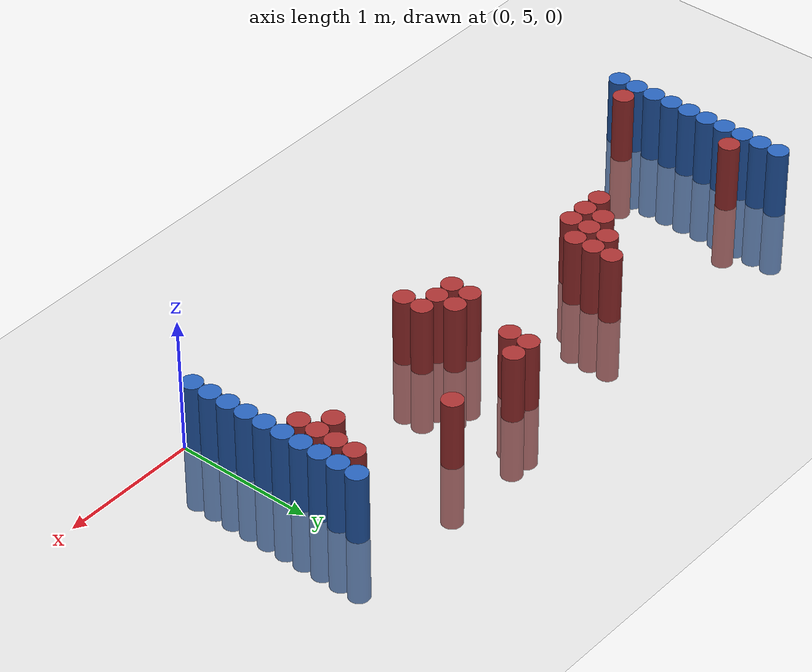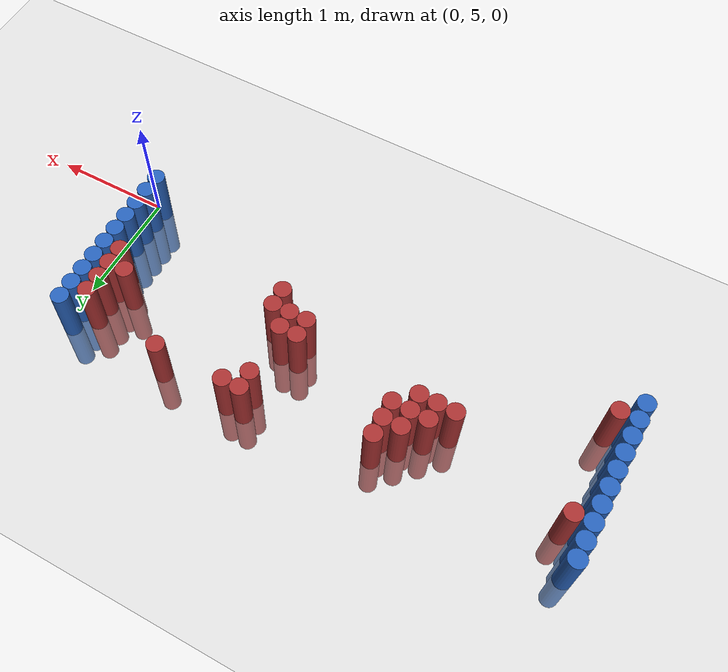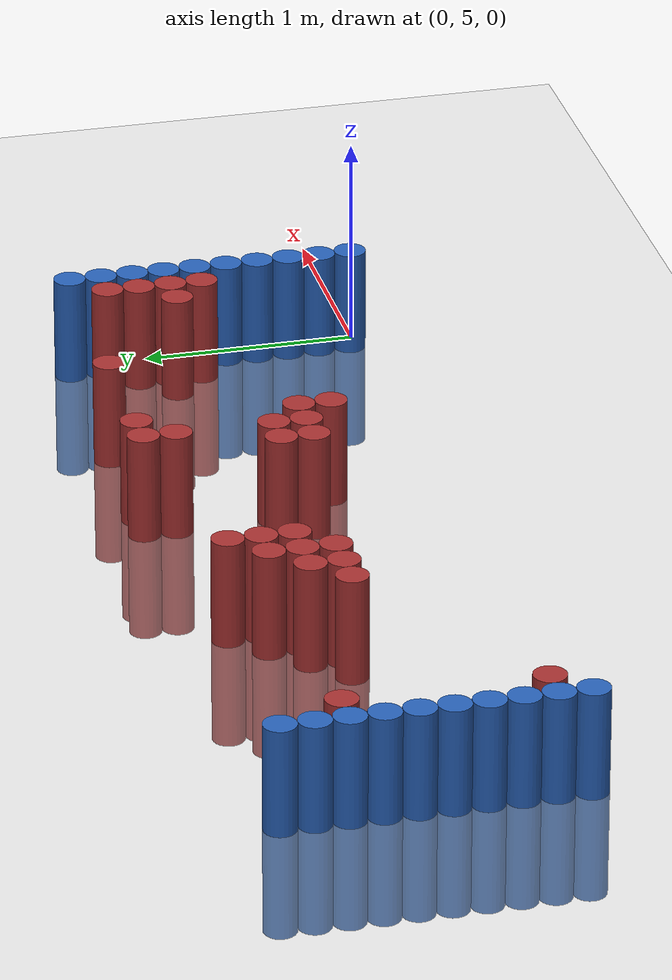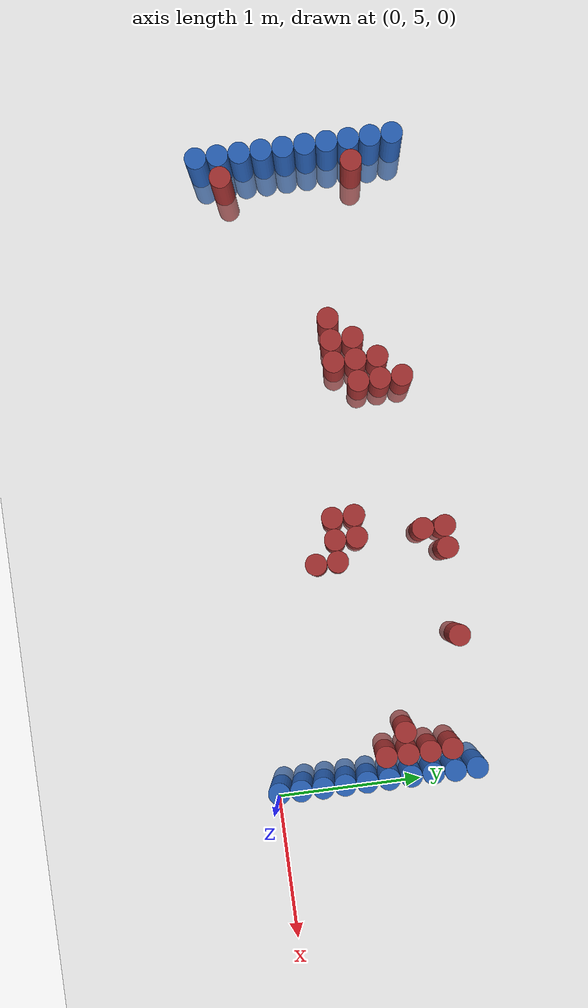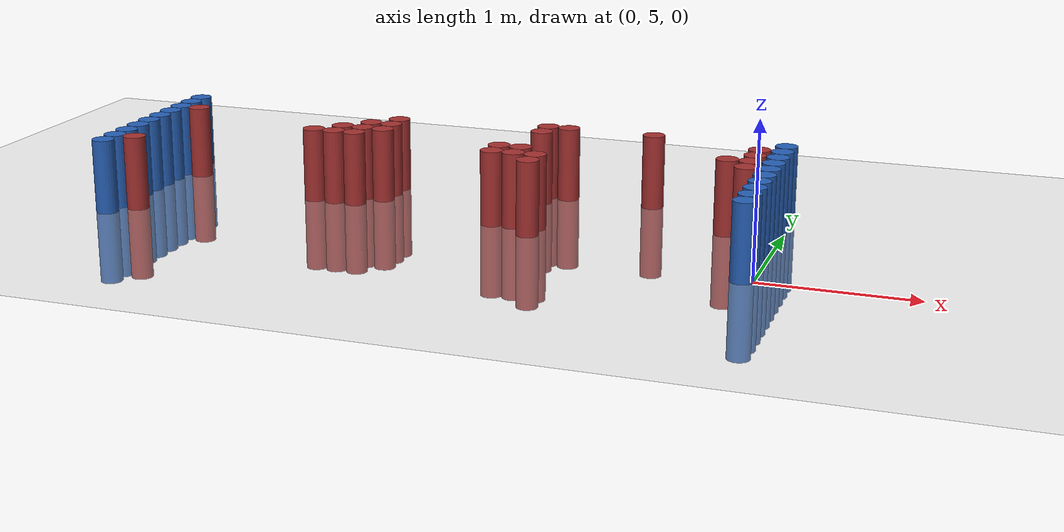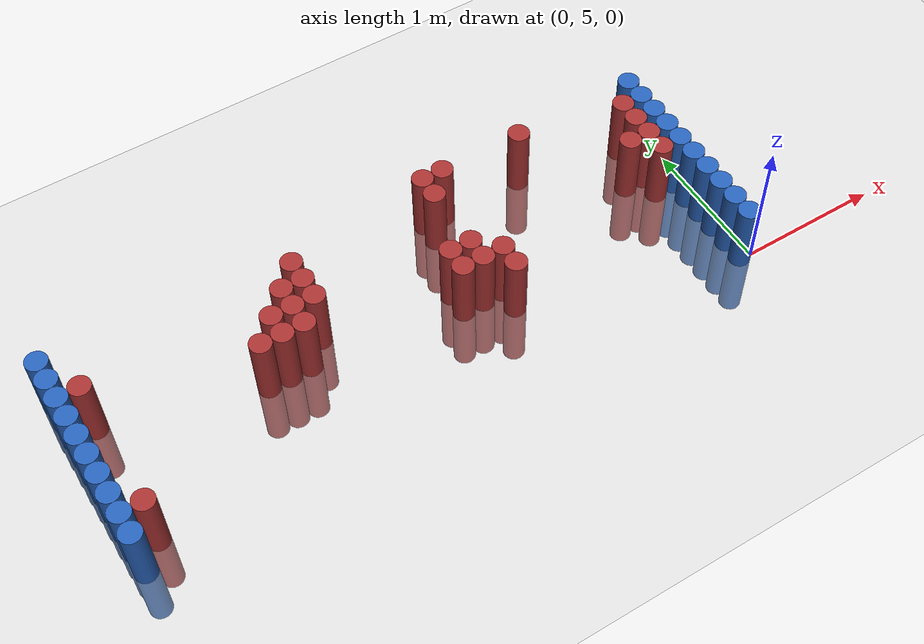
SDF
<sdf version="1.6">
 <world name="default">
  <model name="ground_plane">
   <static>1</static>
   <link name="link">
    <collision name="collision">
     <geometry><plane><normal>0 0 1</normal><size>100 100</size></plane></geometry>
     <surface><friction><ode><mu>100</mu><mu2>50</mu2></ode></friction></surface>
    </collision>
    <visual name="visual">
     <cast_shadows>0</cast_shadows>
     <geometry><plane><normal>0 0 1</normal><size>100 100</size></plane></geometry>
     <material>
      <script><uri>file://media/materials/scripts/gazebo.material</uri><name>Gazebo/Grey</name></script>
     </material>
    </visual>
   </link>
  </model>
  <model name="unit_cylinder_94">
   <static>1</static>
   <pose>-0.075000 5.025000 0.000000 0.000000 0.000000 0.000000</pose>
   <link name="link">
    <inertial>
     <mass>1</mass>
     <inertia><ixx>0.145833</ixx><ixy>0</ixy><ixz>0</ixz><iyy>0.145833</iyy><iyz>0</iyz><izz>0.125</izz></inertia>
    </inertial>
    <collision name="collision">
     <geometry><cylinder><radius>0.075000</radius><length>1</length></cylinder></geometry>
    </collision>
    <visual name="visual">
     <geometry><cylinder><radius>0.075000</radius><length>1</length></cylinder></geometry>
     <material>
      <ambient>0.152000 0.379000 0.720000 1</ambient>
      <diffuse>0.152000 0.379000 0.720000 1</diffuse>
     </material>
     <material>
      <script><name>Gazebo/Grey</name><uri>file://media/materials/scripts/gazebo.material</uri></script>
     </material>
    </visual>
   </link>
  </model>
  <model name="unit_cylinder_95">
   <static>1</static>
   <pose>-4.425000 5.025000 0.000000 0.000000 0.000000 0.000000</pose>
   <link name="link">
    <inertial>
     <mass>1</mass>
     <inertia><ixx>0.145833</ixx><ixy>0</ixy><ixz>0</ixz><iyy>0.145833</iyy><iyz>0</iyz><izz>0.125</izz></inertia>
    </inertial>
    <collision name="collision">
     <geometry><cylinder><radius>0.075000</radius><length>1</length></cylinder></geometry>
    </collision>
    <visual name="visual">
     <geometry><cylinder><radius>0.075000</radius><length>1</length></cylinder></geometry>
     <material>
      <ambient>0.152000 0.379000 0.720000 1</ambient>
      <diffuse>0.152000 0.379000 0.720000 1</diffuse>
     </material>
     <material>
      <script><name>Gazebo/Grey</name><uri>file://media/materials/scripts/gazebo.material</uri></script>
     </material>
    </visual>
   </link>
  </model>
  <model name="unit_cylinder_96">
   <static>1</static>
   <pose>-4.425000 5.175000 0.000000 0.000000 0.000000 0.000000</pose>
   <link name="link">
    <inertial>
     <mass>1</mass>
     <inertia><ixx>0.145833</ixx><ixy>0</ixy><ixz>0</ixz><iyy>0.145833</iyy><iyz>0</iyz><izz>0.125</izz></inertia>
    </inertial>
    <collision name="collision">
     <geometry><cylinder><radius>0.075000</radius><length>1</length></cylinder></geometry>
    </collision>
    <visual name="visual">
     <geometry><cylinder><radius>0.075000</radius><length>1</length></cylinder></geometry>
     <material>
      <ambient>0.152000 0.379000 0.720000 1</ambient>
      <diffuse>0.152000 0.379000 0.720000 1</diffuse>
     </material>
     <material>
      <script><name>Gazebo/Grey</name><uri>file://media/materials/scripts/gazebo.material</uri></script>
     </material>
    </visual>
   </link>
  </model>
  <model name="unit_cylinder_97">
   <static>1</static>
   <pose>-4.425000 5.325000 0.000000 0.000000 0.000000 0.000000</pose>
   <link name="link">
    <inertial>
     <mass>1</mass>
     <inertia><ixx>0.145833</ixx><ixy>0</ixy><ixz>0</ixz><iyy>0.145833</iyy><iyz>0</iyz><izz>0.125</izz></inertia>
    </inertial>
    <collision name="collision">
     <geometry><cylinder><radius>0.075000</radius><length>1</length></cylinder></geometry>
    </collision>
    <visual name="visual">
     <geometry><cylinder><radius>0.075000</radius><length>1</length></cylinder></geometry>
     <material>
      <ambient>0.152000 0.379000 0.720000 1</ambient>
      <diffuse>0.152000 0.379000 0.720000 1</diffuse>
     </material>
     <material>
      <script><name>Gazebo/Grey</name><uri>file://media/materials/scripts/gazebo.material</uri></script>
     </material>
    </visual>
   </link>
  </model>
  <model name="unit_cylinder_98">
   <static>1</static>
   <pose>-4.425000 5.475000 0.000000 0.000000 0.000000 0.000000</pose>
   <link name="link">
    <inertial>
     <mass>1</mass>
     <inertia><ixx>0.145833</ixx><ixy>0</ixy><ixz>0</ixz><iyy>0.145833</iyy><iyz>0</iyz><izz>0.125</izz></inertia>
    </inertial>
    <collision name="collision">
     <geometry><cylinder><radius>0.075000</radius><length>1</length></cylinder></geometry>
    </collision>
    <visual name="visual">
     <geometry><cylinder><radius>0.075000</radius><length>1</length></cylinder></geometry>
     <material>
      <ambient>0.152000 0.379000 0.720000 1</ambient>
      <diffuse>0.152000 0.379000 0.720000 1</diffuse>
     </material>
     <material>
      <script><name>Gazebo/Grey</name><uri>file://media/materials/scripts/gazebo.material</uri></script>
     </material>
    </visual>
   </link>
  </model>
  <model name="unit_cylinder_99">
   <static>1</static>
   <pose>-4.425000 5.625000 0.000000 0.000000 0.000000 0.000000</pose>
   <link name="link">
    <inertial>
     <mass>1</mass>
     <inertia><ixx>0.145833</ixx><ixy>0</ixy><ixz>0</ixz><iyy>0.145833</iyy><iyz>0</iyz><izz>0.125</izz></inertia>
    </inertial>
    <collision name="collision">
     <geometry><cylinder><radius>0.075000</radius><length>1</length></cylinder></geometry>
    </collision>
    <visual name="visual">
     <geometry><cylinder><radius>0.075000</radius><length>1</length></cylinder></geometry>
     <material>
      <ambient>0.152000 0.379000 0.720000 1</ambient>
      <diffuse>0.152000 0.379000 0.720000 1</diffuse>
     </material>
     <material>
      <script><name>Gazebo/Grey</name><uri>file://media/materials/scripts/gazebo.material</uri></script>
     </material>
    </visual>
   </link>
  </model>
  <model name="unit_cylinder_100">
   <static>1</static>
   <pose>-4.425000 5.775000 0.000000 0.000000 0.000000 0.000000</pose>
   <link name="link">
    <inertial>
     <mass>1</mass>
     <inertia><ixx>0.145833</ixx><ixy>0</ixy><ixz>0</ixz><iyy>0.145833</iyy><iyz>0</iyz><izz>0.125</izz></inertia>
    </inertial>
    <collision name="collision">
     <geometry><cylinder><radius>0.075000</radius><length>1</length></cylinder></geometry>
    </collision>
    <visual name="visual">
     <geometry><cylinder><radius>0.075000</radius><length>1</length></cylinder></geometry>
     <material>
      <ambient>0.152000 0.379000 0.720000 1</ambient>
      <diffuse>0.152000 0.379000 0.720000 1</diffuse>
     </material>
     <material>
      <script><name>Gazebo/Grey</name><uri>file://media/materials/scripts/gazebo.material</uri></script>
     </material>
    </visual>
   </link>
  </model>
  <model name="unit_cylinder_101">
   <static>1</static>
   <pose>-4.425000 5.925000 0.000000 0.000000 0.000000 0.000000</pose>
   <link name="link">
    <inertial>
     <mass>1</mass>
     <inertia><ixx>0.145833</ixx><ixy>0</ixy><ixz>0</ixz><iyy>0.145833</iyy><iyz>0</iyz><izz>0.125</izz></inertia>
    </inertial>
    <collision name="collision">
     <geometry><cylinder><radius>0.075000</radius><length>1</length></cylinder></geometry>
    </collision>
    <visual name="visual">
     <geometry><cylinder><radius>0.075000</radius><length>1</length></cylinder></geometry>
     <material>
      <ambient>0.152000 0.379000 0.720000 1</ambient>
      <diffuse>0.152000 0.379000 0.720000 1</diffuse>
     </material>
     <material>
      <script><name>Gazebo/Grey</name><uri>file://media/materials/scripts/gazebo.material</uri></script>
     </material>
    </visual>
   </link>
  </model>
  <model name="unit_cylinder_102">
   <static>1</static>
   <pose>-4.425000 6.075000 0.000000 0.000000 0.000000 0.000000</pose>
   <link name="link">
    <inertial>
     <mass>1</mass>
     <inertia><ixx>0.145833</ixx><ixy>0</ixy><ixz>0</ixz><iyy>0.145833</iyy><iyz>0</iyz><izz>0.125</izz></inertia>
    </inertial>
    <collision name="collision">
     <geometry><cylinder><radius>0.075000</radius><length>1</length></cylinder></geometry>
    </collision>
    <visual name="visual">
     <geometry><cylinder><radius>0.075000</radius><length>1</length></cylinder></geometry>
     <material>
      <ambient>0.152000 0.379000 0.720000 1</ambient>
      <diffuse>0.152000 0.379000 0.720000 1</diffuse>
     </material>
     <material>
      <script><name>Gazebo/Grey</name><uri>file://media/materials/scripts/gazebo.material</uri></script>
     </material>
    </visual>
   </link>
  </model>
  <model name="unit_cylinder_103">
   <static>1</static>
   <pose>-4.425000 6.225000 0.000000 0.000000 0.000000 0.000000</pose>
   <link name="link">
    <inertial>
     <mass>1</mass>
     <inertia><ixx>0.145833</ixx><ixy>0</ixy><ixz>0</ixz><iyy>0.145833</iyy><iyz>0</iyz><izz>0.125</izz></inertia>
    </inertial>
    <collision name="collision">
     <geometry><cylinder><radius>0.075000</radius><length>1</length></cylinder></geometry>
    </collision>
    <visual name="visual">
     <geometry><cylinder><radius>0.075000</radius><length>1</length></cylinder></geometry>
     <material>
      <ambient>0.152000 0.379000 0.720000 1</ambient>
      <diffuse>0.152000 0.379000 0.720000 1</diffuse>
     </material>
     <material>
      <script><name>Gazebo/Grey</name><uri>file://media/materials/scripts/gazebo.material</uri></script>
     </material>
    </visual>
   </link>
  </model>
  <model name="unit_cylinder_104">
   <static>1</static>
   <pose>-4.425000 6.375000 0.000000 0.000000 0.000000 0.000000</pose>
   <link name="link">
    <inertial>
     <mass>1</mass>
     <inertia><ixx>0.145833</ixx><ixy>0</ixy><ixz>0</ixz><iyy>0.145833</iyy><iyz>0</iyz><izz>0.125</izz></inertia>
    </inertial>
    <collision name="collision">
     <geometry><cylinder><radius>0.075000</radius><length>1</length></cylinder></geometry>
    </collision>
    <visual name="visual">
     <geometry><cylinder><radius>0.075000</radius><length>1</length></cylinder></geometry>
     <material>
      <ambient>0.152000 0.379000 0.720000 1</ambient>
      <diffuse>0.152000 0.379000 0.720000 1</diffuse>
     </material>
     <material>
      <script><name>Gazebo/Grey</name><uri>file://media/materials/scripts/gazebo.material</uri></script>
     </material>
    </visual>
   </link>
  </model>
  <model name="unit_cylinder_126">
   <static>1</static>
   <pose>-4.275000 5.175000 0.000000 0.000000 0.000000 0.000000</pose>
   <link name="link">
    <inertial>
     <mass>1</mass>
     <inertia><ixx>0.145833</ixx><ixy>0</ixy><ixz>0</ixz><iyy>0.145833</iyy><iyz>0</iyz><izz>0.125</izz></inertia>
    </inertial>
    <collision name="collision">
     <geometry><cylinder><radius>0.075000</radius><length>1</length></cylinder></geometry>
    </collision>
    <visual name="visual">
     <geometry><cylinder><radius>0.075000</radius><length>1</length></cylinder></geometry>
     <material>
      <ambient>0.648000 0.192000 0.192000 1</ambient>
      <diffuse>0.648000 0.192000 0.192000 1</diffuse>
     </material>
     <material>
      <script><name>Gazebo/Grey</name><uri>file://media/materials/scripts/gazebo.material</uri></script>
     </material>
    </visual>
   </link>
  </model>
  <model name="unit_cylinder_127">
   <static>1</static>
   <pose>-4.275000 6.075000 0.000000 0.000000 0.000000 0.000000</pose>
   <link name="link">
    <inertial>
     <mass>1</mass>
     <inertia><ixx>0.145833</ixx><ixy>0</ixy><ixz>0</ixz><iyy>0.145833</iyy><iyz>0</iyz><izz>0.125</izz></inertia>
    </inertial>
    <collision name="collision">
     <geometry><cylinder><radius>0.075000</radius><length>1</length></cylinder></geometry>
    </collision>
    <visual name="visual">
     <geometry><cylinder><radius>0.075000</radius><length>1</length></cylinder></geometry>
     <material>
      <ambient>0.648000 0.192000 0.192000 1</ambient>
      <diffuse>0.648000 0.192000 0.192000 1</diffuse>
     </material>
     <material>
      <script><name>Gazebo/Grey</name><uri>file://media/materials/scripts/gazebo.material</uri></script>
     </material>
    </visual>
   </link>
  </model>
  <model name="unit_cylinder_161">
   <static>1</static>
   <pose>-3.225000 5.775000 0.000000 0.000000 0.000000 0.000000</pose>
   <link name="link">
    <inertial>
     <mass>1</mass>
     <inertia><ixx>0.145833</ixx><ixy>0</ixy><ixz>0</ixz><iyy>0.145833</iyy><iyz>0</iyz><izz>0.125</izz></inertia>
    </inertial>
    <collision name="collision">
     <geometry><cylinder><radius>0.075000</radius><length>1</length></cylinder></geometry>
    </collision>
    <visual name="visual">
     <geometry><cylinder><radius>0.075000</radius><length>1</length></cylinder></geometry>
     <material>
      <ambient>0.648000 0.192000 0.192000 1</ambient>
      <diffuse>0.648000 0.192000 0.192000 1</diffuse>
     </material>
     <material>
      <script><name>Gazebo/Grey</name><uri>file://media/materials/scripts/gazebo.material</uri></script>
     </material>
    </visual>
   </link>
  </model>
  <model name="unit_cylinder_162">
   <static>1</static>
   <pose>-3.075000 5.775000 0.000000 0.000000 0.000000 0.000000</pose>
   <link name="link">
    <inertial>
     <mass>1</mass>
     <inertia><ixx>0.145833</ixx><ixy>0</ixy><ixz>0</ixz><iyy>0.145833</iyy><iyz>0</iyz><izz>0.125</izz></inertia>
    </inertial>
    <collision name="collision">
     <geometry><cylinder><radius>0.075000</radius><length>1</length></cylinder></geometry>
    </collision>
    <visual name="visual">
     <geometry><cylinder><radius>0.075000</radius><length>1</length></cylinder></geometry>
     <material>
      <ambient>0.648000 0.192000 0.192000 1</ambient>
      <diffuse>0.648000 0.192000 0.192000 1</diffuse>
     </material>
     <material>
      <script><name>Gazebo/Grey</name><uri>file://media/materials/scripts/gazebo.material</uri></script>
     </material>
    </visual>
   </link>
  </model>
  <model name="unit_cylinder_163">
   <static>1</static>
   <pose>-3.075000 5.925000 0.000000 0.000000 0.000000 0.000000</pose>
   <link name="link">
    <inertial>
     <mass>1</mass>
     <inertia><ixx>0.145833</ixx><ixy>0</ixy><ixz>0</ixz><iyy>0.145833</iyy><iyz>0</iyz><izz>0.125</izz></inertia>
    </inertial>
    <collision name="collision">
     <geometry><cylinder><radius>0.075000</radius><length>1</length></cylinder></geometry>
    </collision>
    <visual name="visual">
     <geometry><cylinder><radius>0.075000</radius><length>1</length></cylinder></geometry>
     <material>
      <ambient>0.648000 0.192000 0.192000 1</ambient>
      <diffuse>0.648000 0.192000 0.192000 1</diffuse>
     </material>
     <material>
      <script><name>Gazebo/Grey</name><uri>file://media/materials/scripts/gazebo.material</uri></script>
     </material>
    </visual>
   </link>
  </model>
  <model name="unit_cylinder_167">
   <static>1</static>
   <pose>-2.925000 5.775000 0.000000 0.000000 0.000000 0.000000</pose>
   <link name="link">
    <inertial>
     <mass>1</mass>
     <inertia><ixx>0.145833</ixx><ixy>0</ixy><ixz>0</ixz><iyy>0.145833</iyy><iyz>0</iyz><izz>0.125</izz></inertia>
    </inertial>
    <collision name="collision">
     <geometry><cylinder><radius>0.075000</radius><length>1</length></cylinder></geometry>
    </collision>
    <visual name="visual">
     <geometry><cylinder><radius>0.075000</radius><length>1</length></cylinder></geometry>
     <material>
      <ambient>0.648000 0.192000 0.192000 1</ambient>
      <diffuse>0.648000 0.192000 0.192000 1</diffuse>
     </material>
     <material>
      <script><name>Gazebo/Grey</name><uri>file://media/materials/scripts/gazebo.material</uri></script>
     </material>
    </visual>
   </link>
  </model>
  <model name="unit_cylinder_168">
   <static>1</static>
   <pose>-2.925000 5.925000 0.000000 0.000000 0.000000 0.000000</pose>
   <link name="link">
    <inertial>
     <mass>1</mass>
     <inertia><ixx>0.145833</ixx><ixy>0</ixy><ixz>0</ixz><iyy>0.145833</iyy><iyz>0</iyz><izz>0.125</izz></inertia>
    </inertial>
    <collision name="collision">
     <geometry><cylinder><radius>0.075000</radius><length>1</length></cylinder></geometry>
    </collision>
    <visual name="visual">
     <geometry><cylinder><radius>0.075000</radius><length>1</length></cylinder></geometry>
     <material>
      <ambient>0.648000 0.192000 0.192000 1</ambient>
      <diffuse>0.648000 0.192000 0.192000 1</diffuse>
     </material>
     <material>
      <script><name>Gazebo/Grey</name><uri>file://media/materials/scripts/gazebo.material</uri></script>
     </material>
    </visual>
   </link>
  </model>
  <model name="unit_cylinder_169">
   <static>1</static>
   <pose>-2.925000 6.075000 0.000000 0.000000 0.000000 0.000000</pose>
   <link name="link">
    <inertial>
     <mass>1</mass>
     <inertia><ixx>0.145833</ixx><ixy>0</ixy><ixz>0</ixz><iyy>0.145833</iyy><iyz>0</iyz><izz>0.125</izz></inertia>
    </inertial>
    <collision name="collision">
     <geometry><cylinder><radius>0.075000</radius><length>1</length></cylinder></geometry>
    </collision>
    <visual name="visual">
     <geometry><cylinder><radius>0.075000</radius><length>1</length></cylinder></geometry>
     <material>
      <ambient>0.648000 0.192000 0.192000 1</ambient>
      <diffuse>0.648000 0.192000 0.192000 1</diffuse>
     </material>
     <material>
      <script><name>Gazebo/Grey</name><uri>file://media/materials/scripts/gazebo.material</uri></script>
     </material>
    </visual>
   </link>
  </model>
  <model name="unit_cylinder_175">
   <static>1</static>
   <pose>-2.775000 5.925000 0.000000 0.000000 0.000000 0.000000</pose>
   <link name="link">
    <inertial>
     <mass>1</mass>
     <inertia><ixx>0.145833</ixx><ixy>0</ixy><ixz>0</ixz><iyy>0.145833</iyy><iyz>0</iyz><izz>0.125</izz></inertia>
    </inertial>
    <collision name="collision">
     <geometry><cylinder><radius>0.075000</radius><length>1</length></cylinder></geometry>
    </collision>
    <visual name="visual">
     <geometry><cylinder><radius>0.075000</radius><length>1</length></cylinder></geometry>
     <material>
      <ambient>0.648000 0.192000 0.192000 1</ambient>
      <diffuse>0.648000 0.192000 0.192000 1</diffuse>
     </material>
     <material>
      <script><name>Gazebo/Grey</name><uri>file://media/materials/scripts/gazebo.material</uri></script>
     </material>
    </visual>
   </link>
  </model>
  <model name="unit_cylinder_176">
   <static>1</static>
   <pose>-2.775000 6.075000 0.000000 0.000000 0.000000 0.000000</pose>
   <link name="link">
    <inertial>
     <mass>1</mass>
     <inertia><ixx>0.145833</ixx><ixy>0</ixy><ixz>0</ixz><iyy>0.145833</iyy><iyz>0</iyz><izz>0.125</izz></inertia>
    </inertial>
    <collision name="collision">
     <geometry><cylinder><radius>0.075000</radius><length>1</length></cylinder></geometry>
    </collision>
    <visual name="visual">
     <geometry><cylinder><radius>0.075000</radius><length>1</length></cylinder></geometry>
     <material>
      <ambient>0.648000 0.192000 0.192000 1</ambient>
      <diffuse>0.648000 0.192000 0.192000 1</diffuse>
     </material>
     <material>
      <script><name>Gazebo/Grey</name><uri>file://media/materials/scripts/gazebo.material</uri></script>
     </material>
    </visual>
   </link>
  </model>
  <model name="unit_cylinder_177">
   <static>1</static>
   <pose>-2.775000 6.225000 0.000000 0.000000 0.000000 0.000000</pose>
   <link name="link">
    <inertial>
     <mass>1</mass>
     <inertia><ixx>0.145833</ixx><ixy>0</ixy><ixz>0</ixz><iyy>0.145833</iyy><iyz>0</iyz><izz>0.125</izz></inertia>
    </inertial>
    <collision name="collision">
     <geometry><cylinder><radius>0.075000</radius><length>1</length></cylinder></geometry>
    </collision>
    <visual name="visual">
     <geometry><cylinder><radius>0.075000</radius><length>1</length></cylinder></geometry>
     <material>
      <ambient>0.648000 0.192000 0.192000 1</ambient>
      <diffuse>0.648000 0.192000 0.192000 1</diffuse>
     </material>
     <material>
      <script><name>Gazebo/Grey</name><uri>file://media/materials/scripts/gazebo.material</uri></script>
     </material>
    </visual>
   </link>
  </model>
  <model name="unit_cylinder_201">
   <static>1</static>
   <pose>-1.875000 5.625000 0.000000 0.000000 0.000000 0.000000</pose>
   <link name="link">
    <inertial>
     <mass>1</mass>
     <inertia><ixx>0.145833</ixx><ixy>0</ixy><ixz>0</ixz><iyy>0.145833</iyy><iyz>0</iyz><izz>0.125</izz></inertia>
    </inertial>
    <collision name="collision">
     <geometry><cylinder><radius>0.075000</radius><length>1</length></cylinder></geometry>
    </collision>
    <visual name="visual">
     <geometry><cylinder><radius>0.075000</radius><length>1</length></cylinder></geometry>
     <material>
      <ambient>0.648000 0.192000 0.192000 1</ambient>
      <diffuse>0.648000 0.192000 0.192000 1</diffuse>
     </material>
     <material>
      <script><name>Gazebo/Grey</name><uri>file://media/materials/scripts/gazebo.material</uri></script>
     </material>
    </visual>
   </link>
  </model>
  <model name="unit_cylinder_202">
   <static>1</static>
   <pose>-1.875000 5.775000 0.000000 0.000000 0.000000 0.000000</pose>
   <link name="link">
    <inertial>
     <mass>1</mass>
     <inertia><ixx>0.145833</ixx><ixy>0</ixy><ixz>0</ixz><iyy>0.145833</iyy><iyz>0</iyz><izz>0.125</izz></inertia>
    </inertial>
    <collision name="collision">
     <geometry><cylinder><radius>0.075000</radius><length>1</length></cylinder></geometry>
    </collision>
    <visual name="visual">
     <geometry><cylinder><radius>0.075000</radius><length>1</length></cylinder></geometry>
     <material>
      <ambient>0.648000 0.192000 0.192000 1</ambient>
      <diffuse>0.648000 0.192000 0.192000 1</diffuse>
     </material>
     <material>
      <script><name>Gazebo/Grey</name><uri>file://media/materials/scripts/gazebo.material</uri></script>
     </material>
    </visual>
   </link>
  </model>
  <model name="unit_cylinder_210">
   <static>1</static>
   <pose>-1.725000 5.625000 0.000000 0.000000 0.000000 0.000000</pose>
   <link name="link">
    <inertial>
     <mass>1</mass>
     <inertia><ixx>0.145833</ixx><ixy>0</ixy><ixz>0</ixz><iyy>0.145833</iyy><iyz>0</iyz><izz>0.125</izz></inertia>
    </inertial>
    <collision name="collision">
     <geometry><cylinder><radius>0.075000</radius><length>1</length></cylinder></geometry>
    </collision>
    <visual name="visual">
     <geometry><cylinder><radius>0.075000</radius><length>1</length></cylinder></geometry>
     <material>
      <ambient>0.648000 0.192000 0.192000 1</ambient>
      <diffuse>0.648000 0.192000 0.192000 1</diffuse>
     </material>
     <material>
      <script><name>Gazebo/Grey</name><uri>file://media/materials/scripts/gazebo.material</uri></script>
     </material>
    </visual>
   </link>
  </model>
  <model name="unit_cylinder_211">
   <static>1</static>
   <pose>-1.725000 5.775000 0.000000 0.000000 0.000000 0.000000</pose>
   <link name="link">
    <inertial>
     <mass>1</mass>
     <inertia><ixx>0.145833</ixx><ixy>0</ixy><ixz>0</ixz><iyy>0.145833</iyy><iyz>0</iyz><izz>0.125</izz></inertia>
    </inertial>
    <collision name="collision">
     <geometry><cylinder><radius>0.075000</radius><length>1</length></cylinder></geometry>
    </collision>
    <visual name="visual">
     <geometry><cylinder><radius>0.075000</radius><length>1</length></cylinder></geometry>
     <material>
      <ambient>0.648000 0.192000 0.192000 1</ambient>
      <diffuse>0.648000 0.192000 0.192000 1</diffuse>
     </material>
     <material>
      <script><name>Gazebo/Grey</name><uri>file://media/materials/scripts/gazebo.material</uri></script>
     </material>
    </visual>
   </link>
  </model>
  <model name="unit_cylinder_212">
   <static>1</static>
   <pose>-1.725000 6.225000 0.000000 0.000000 0.000000 0.000000</pose>
   <link name="link">
    <inertial>
     <mass>1</mass>
     <inertia><ixx>0.145833</ixx><ixy>0</ixy><ixz>0</ixz><iyy>0.145833</iyy><iyz>0</iyz><izz>0.125</izz></inertia>
    </inertial>
    <collision name="collision">
     <geometry><cylinder><radius>0.075000</radius><length>1</length></cylinder></geometry>
    </collision>
    <visual name="visual">
     <geometry><cylinder><radius>0.075000</radius><length>1</length></cylinder></geometry>
     <material>
      <ambient>0.648000 0.192000 0.192000 1</ambient>
      <diffuse>0.648000 0.192000 0.192000 1</diffuse>
     </material>
     <material>
      <script><name>Gazebo/Grey</name><uri>file://media/materials/scripts/gazebo.material</uri></script>
     </material>
    </visual>
   </link>
  </model>
  <model name="unit_cylinder_213">
   <static>1</static>
   <pose>-1.725000 6.375000 0.000000 0.000000 0.000000 0.000000</pose>
   <link name="link">
    <inertial>
     <mass>1</mass>
     <inertia><ixx>0.145833</ixx><ixy>0</ixy><ixz>0</ixz><iyy>0.145833</iyy><iyz>0</iyz><izz>0.125</izz></inertia>
    </inertial>
    <collision name="collision">
     <geometry><cylinder><radius>0.075000</radius><length>1</length></cylinder></geometry>
    </collision>
    <visual name="visual">
     <geometry><cylinder><radius>0.075000</radius><length>1</length></cylinder></geometry>
     <material>
      <ambient>0.648000 0.192000 0.192000 1</ambient>
      <diffuse>0.648000 0.192000 0.192000 1</diffuse>
     </material>
     <material>
      <script><name>Gazebo/Grey</name><uri>file://media/materials/scripts/gazebo.material</uri></script>
     </material>
    </visual>
   </link>
  </model>
  <model name="unit_cylinder_218">
   <static>1</static>
   <pose>-1.575000 5.475000 0.000000 0.000000 0.000000 0.000000</pose>
   <link name="link">
    <inertial>
     <mass>1</mass>
     <inertia><ixx>0.145833</ixx><ixy>0</ixy><ixz>0</ixz><iyy>0.145833</iyy><iyz>0</iyz><izz>0.125</izz></inertia>
    </inertial>
    <collision name="collision">
     <geometry><cylinder><radius>0.075000</radius><length>1</length></cylinder></geometry>
    </collision>
    <visual name="visual">
     <geometry><cylinder><radius>0.075000</radius><length>1</length></cylinder></geometry>
     <material>
      <ambient>0.648000 0.192000 0.192000 1</ambient>
      <diffuse>0.648000 0.192000 0.192000 1</diffuse>
     </material>
     <material>
      <script><name>Gazebo/Grey</name><uri>file://media/materials/scripts/gazebo.material</uri></script>
     </material>
    </visual>
   </link>
  </model>
  <model name="unit_cylinder_219">
   <static>1</static>
   <pose>-1.575000 5.625000 0.000000 0.000000 0.000000 0.000000</pose>
   <link name="link">
    <inertial>
     <mass>1</mass>
     <inertia><ixx>0.145833</ixx><ixy>0</ixy><ixz>0</ixz><iyy>0.145833</iyy><iyz>0</iyz><izz>0.125</izz></inertia>
    </inertial>
    <collision name="collision">
     <geometry><cylinder><radius>0.075000</radius><length>1</length></cylinder></geometry>
    </collision>
    <visual name="visual">
     <geometry><cylinder><radius>0.075000</radius><length>1</length></cylinder></geometry>
     <material>
      <ambient>0.648000 0.192000 0.192000 1</ambient>
      <diffuse>0.648000 0.192000 0.192000 1</diffuse>
     </material>
     <material>
      <script><name>Gazebo/Grey</name><uri>file://media/materials/scripts/gazebo.material</uri></script>
     </material>
    </visual>
   </link>
  </model>
  <model name="unit_cylinder_220">
   <static>1</static>
   <pose>-1.575000 6.375000 0.000000 0.000000 0.000000 0.000000</pose>
   <link name="link">
    <inertial>
     <mass>1</mass>
     <inertia><ixx>0.145833</ixx><ixy>0</ixy><ixz>0</ixz><iyy>0.145833</iyy><iyz>0</iyz><izz>0.125</izz></inertia>
    </inertial>
    <collision name="collision">
     <geometry><cylinder><radius>0.075000</radius><length>1</length></cylinder></geometry>
    </collision>
    <visual name="visual">
     <geometry><cylinder><radius>0.075000</radius><length>1</length></cylinder></geometry>
     <material>
      <ambient>0.648000 0.192000 0.192000 1</ambient>
      <diffuse>0.648000 0.192000 0.192000 1</diffuse>
     </material>
     <material>
      <script><name>Gazebo/Grey</name><uri>file://media/materials/scripts/gazebo.material</uri></script>
     </material>
    </visual>
   </link>
  </model>
  <model name="unit_cylinder_224">
   <static>1</static>
   <pose>-0.975000 6.375000 0.000000 0.000000 0.000000 0.000000</pose>
   <link name="link">
    <inertial>
     <mass>1</mass>
     <inertia><ixx>0.145833</ixx><ixy>0</ixy><ixz>0</ixz><iyy>0.145833</iyy><iyz>0</iyz><izz>0.125</izz></inertia>
    </inertial>
    <collision name="collision">
     <geometry><cylinder><radius>0.075000</radius><length>1</length></cylinder></geometry>
    </collision>
    <visual name="visual">
     <geometry><cylinder><radius>0.075000</radius><length>1</length></cylinder></geometry>
     <material>
      <ambient>0.648000 0.192000 0.192000 1</ambient>
      <diffuse>0.648000 0.192000 0.192000 1</diffuse>
     </material>
     <material>
      <script><name>Gazebo/Grey</name><uri>file://media/materials/scripts/gazebo.material</uri></script>
     </material>
    </visual>
   </link>
  </model>
  <model name="unit_cylinder_230">
   <static>1</static>
   <pose>-0.375000 5.925000 0.000000 0.000000 0.000000 0.000000</pose>
   <link name="link">
    <inertial>
     <mass>1</mass>
     <inertia><ixx>0.145833</ixx><ixy>0</ixy><ixz>0</ixz><iyy>0.145833</iyy><iyz>0</iyz><izz>0.125</izz></inertia>
    </inertial>
    <collision name="collision">
     <geometry><cylinder><radius>0.075000</radius><length>1</length></cylinder></geometry>
    </collision>
    <visual name="visual">
     <geometry><cylinder><radius>0.075000</radius><length>1</length></cylinder></geometry>
     <material>
      <ambient>0.648000 0.192000 0.192000 1</ambient>
      <diffuse>0.648000 0.192000 0.192000 1</diffuse>
     </material>
     <material>
      <script><name>Gazebo/Grey</name><uri>file://media/materials/scripts/gazebo.material</uri></script>
     </material>
    </visual>
   </link>
  </model>
  <model name="unit_cylinder_235">
   <static>1</static>
   <pose>-0.225000 5.775000 0.000000 0.000000 0.000000 0.000000</pose>
   <link name="link">
    <inertial>
     <mass>1</mass>
     <inertia><ixx>0.145833</ixx><ixy>0</ixy><ixz>0</ixz><iyy>0.145833</iyy><iyz>0</iyz><izz>0.125</izz></inertia>
    </inertial>
    <collision name="collision">
     <geometry><cylinder><radius>0.075000</radius><length>1</length></cylinder></geometry>
    </collision>
    <visual name="visual">
     <geometry><cylinder><radius>0.075000</radius><length>1</length></cylinder></geometry>
     <material>
      <ambient>0.648000 0.192000 0.192000 1</ambient>
      <diffuse>0.648000 0.192000 0.192000 1</diffuse>
     </material>
     <material>
      <script><name>Gazebo/Grey</name><uri>file://media/materials/scripts/gazebo.material</uri></script>
     </material>
    </visual>
   </link>
  </model>
  <model name="unit_cylinder_236">
   <static>1</static>
   <pose>-0.225000 5.925000 0.000000 0.000000 0.000000 0.000000</pose>
   <link name="link">
    <inertial>
     <mass>1</mass>
     <inertia><ixx>0.145833</ixx><ixy>0</ixy><ixz>0</ixz><iyy>0.145833</iyy><iyz>0</iyz><izz>0.125</izz></inertia>
    </inertial>
    <collision name="collision">
     <geometry><cylinder><radius>0.075000</radius><length>1</length></cylinder></geometry>
    </collision>
    <visual name="visual">
     <geometry><cylinder><radius>0.075000</radius><length>1</length></cylinder></geometry>
     <material>
      <ambient>0.648000 0.192000 0.192000 1</ambient>
      <diffuse>0.648000 0.192000 0.192000 1</diffuse>
     </material>
     <material>
      <script><name>Gazebo/Grey</name><uri>file://media/materials/scripts/gazebo.material</uri></script>
     </material>
    </visual>
   </link>
  </model>
  <model name="unit_cylinder_237">
   <static>1</static>
   <pose>-0.225000 6.075000 0.000000 0.000000 0.000000 0.000000</pose>
   <link name="link">
    <inertial>
     <mass>1</mass>
     <inertia><ixx>0.145833</ixx><ixy>0</ixy><ixz>0</ixz><iyy>0.145833</iyy><iyz>0</iyz><izz>0.125</izz></inertia>
    </inertial>
    <collision name="collision">
     <geometry><cylinder><radius>0.075000</radius><length>1</length></cylinder></geometry>
    </collision>
    <visual name="visual">
     <geometry><cylinder><radius>0.075000</radius><length>1</length></cylinder></geometry>
     <material>
      <ambient>0.648000 0.192000 0.192000 1</ambient>
      <diffuse>0.648000 0.192000 0.192000 1</diffuse>
     </material>
     <material>
      <script><name>Gazebo/Grey</name><uri>file://media/materials/scripts/gazebo.material</uri></script>
     </material>
    </visual>
   </link>
  </model>
  <model name="unit_cylinder_238">
   <static>1</static>
   <pose>-0.225000 6.225000 0.000000 0.000000 0.000000 0.000000</pose>
   <link name="link">
    <inertial>
     <mass>1</mass>
     <inertia><ixx>0.145833</ixx><ixy>0</ixy><ixz>0</ixz><iyy>0.145833</iyy><iyz>0</iyz><izz>0.125</izz></inertia>
    </inertial>
    <collision name="collision">
     <geometry><cylinder><radius>0.075000</radius><length>1</length></cylinder></geometry>
    </collision>
    <visual name="visual">
     <geometry><cylinder><radius>0.075000</radius><length>1</length></cylinder></geometry>
     <material>
      <ambient>0.648000 0.192000 0.192000 1</ambient>
      <diffuse>0.648000 0.192000 0.192000 1</diffuse>
     </material>
     <material>
      <script><name>Gazebo/Grey</name><uri>file://media/materials/scripts/gazebo.material</uri></script>
     </material>
    </visual>
   </link>
  </model>
  <model name="unit_cylinder_249">
   <static>1</static>
   <pose>-0.075000 5.175000 0.000000 0.000000 0.000000 0.000000</pose>
   <link name="link">
    <inertial>
     <mass>1</mass>
     <inertia><ixx>0.145833</ixx><ixy>0</ixy><ixz>0</ixz><iyy>0.145833</iyy><iyz>0</iyz><izz>0.125</izz></inertia>
    </inertial>
    <collision name="collision">
     <geometry><cylinder><radius>0.075000</radius><length>1</length></cylinder></geometry>
    </collision>
    <visual name="visual">
     <geometry><cylinder><radius>0.075000</radius><length>1</length></cylinder></geometry>
     <material>
      <ambient>0.152000 0.379000 0.720000 1</ambient>
      <diffuse>0.152000 0.379000 0.720000 1</diffuse>
     </material>
     <material>
      <script><name>Gazebo/Grey</name><uri>file://media/materials/scripts/gazebo.material</uri></script>
     </material>
    </visual>
   </link>
  </model>
  <model name="unit_cylinder_250">
   <static>1</static>
   <pose>-0.075000 5.325000 0.000000 0.000000 0.000000 0.000000</pose>
   <link name="link">
    <inertial>
     <mass>1</mass>
     <inertia><ixx>0.145833</ixx><ixy>0</ixy><ixz>0</ixz><iyy>0.145833</iyy><iyz>0</iyz><izz>0.125</izz></inertia>
    </inertial>
    <collision name="collision">
     <geometry><cylinder><radius>0.075000</radius><length>1</length></cylinder></geometry>
    </collision>
    <visual name="visual">
     <geometry><cylinder><radius>0.075000</radius><length>1</length></cylinder></geometry>
     <material>
      <ambient>0.152000 0.379000 0.720000 1</ambient>
      <diffuse>0.152000 0.379000 0.720000 1</diffuse>
     </material>
     <material>
      <script><name>Gazebo/Grey</name><uri>file://media/materials/scripts/gazebo.material</uri></script>
     </material>
    </visual>
   </link>
  </model>
  <model name="unit_cylinder_251">
   <static>1</static>
   <pose>-0.075000 5.475000 0.000000 0.000000 0.000000 0.000000</pose>
   <link name="link">
    <inertial>
     <mass>1</mass>
     <inertia><ixx>0.145833</ixx><ixy>0</ixy><ixz>0</ixz><iyy>0.145833</iyy><iyz>0</iyz><izz>0.125</izz></inertia>
    </inertial>
    <collision name="collision">
     <geometry><cylinder><radius>0.075000</radius><length>1</length></cylinder></geometry>
    </collision>
    <visual name="visual">
     <geometry><cylinder><radius>0.075000</radius><length>1</length></cylinder></geometry>
     <material>
      <ambient>0.152000 0.379000 0.720000 1</ambient>
      <diffuse>0.152000 0.379000 0.720000 1</diffuse>
     </material>
     <material>
      <script><name>Gazebo/Grey</name><uri>file://media/materials/scripts/gazebo.material</uri></script>
     </material>
    </visual>
   </link>
  </model>
  <model name="unit_cylinder_252">
   <static>1</static>
   <pose>-0.075000 5.625000 0.000000 0.000000 0.000000 0.000000</pose>
   <link name="link">
    <inertial>
     <mass>1</mass>
     <inertia><ixx>0.145833</ixx><ixy>0</ixy><ixz>0</ixz><iyy>0.145833</iyy><iyz>0</iyz><izz>0.125</izz></inertia>
    </inertial>
    <collision name="collision">
     <geometry><cylinder><radius>0.075000</radius><length>1</length></cylinder></geometry>
    </collision>
    <visual name="visual">
     <geometry><cylinder><radius>0.075000</radius><length>1</length></cylinder></geometry>
     <material>
      <ambient>0.152000 0.379000 0.720000 1</ambient>
      <diffuse>0.152000 0.379000 0.720000 1</diffuse>
     </material>
     <material>
      <script><name>Gazebo/Grey</name><uri>file://media/materials/scripts/gazebo.material</uri></script>
     </material>
    </visual>
   </link>
  </model>
  <model name="unit_cylinder_253">
   <static>1</static>
   <pose>-0.075000 5.775000 0.000000 0.000000 0.000000 0.000000</pose>
   <link name="link">
    <inertial>
     <mass>1</mass>
     <inertia><ixx>0.145833</ixx><ixy>0</ixy><ixz>0</ixz><iyy>0.145833</iyy><iyz>0</iyz><izz>0.125</izz></inertia>
    </inertial>
    <collision name="collision">
     <geometry><cylinder><radius>0.075000</radius><length>1</length></cylinder></geometry>
    </collision>
    <visual name="visual">
     <geometry><cylinder><radius>0.075000</radius><length>1</length></cylinder></geometry>
     <material>
      <ambient>0.152000 0.379000 0.720000 1</ambient>
      <diffuse>0.152000 0.379000 0.720000 1</diffuse>
     </material>
     <material>
      <script><name>Gazebo/Grey</name><uri>file://media/materials/scripts/gazebo.material</uri></script>
     </material>
    </visual>
   </link>
  </model>
  <model name="unit_cylinder_254">
   <static>1</static>
   <pose>-0.075000 5.925000 0.000000 0.000000 0.000000 0.000000</pose>
   <link name="link">
    <inertial>
     <mass>1</mass>
     <inertia><ixx>0.145833</ixx><ixy>0</ixy><ixz>0</ixz><iyy>0.145833</iyy><iyz>0</iyz><izz>0.125</izz></inertia>
    </inertial>
    <collision name="collision">
     <geometry><cylinder><radius>0.075000</radius><length>1</length></cylinder></geometry>
    </collision>
    <visual name="visual">
     <geometry><cylinder><radius>0.075000</radius><length>1</length></cylinder></geometry>
     <material>
      <ambient>0.152000 0.379000 0.720000 1</ambient>
      <diffuse>0.152000 0.379000 0.720000 1</diffuse>
     </material>
     <material>
      <script><name>Gazebo/Grey</name><uri>file://media/materials/scripts/gazebo.material</uri></script>
     </material>
    </visual>
   </link>
  </model>
  <model name="unit_cylinder_255">
   <static>1</static>
   <pose>-0.075000 6.075000 0.000000 0.000000 0.000000 0.000000</pose>
   <link name="link">
    <inertial>
     <mass>1</mass>
     <inertia><ixx>0.145833</ixx><ixy>0</ixy><ixz>0</ixz><iyy>0.145833</iyy><iyz>0</iyz><izz>0.125</izz></inertia>
    </inertial>
    <collision name="collision">
     <geometry><cylinder><radius>0.075000</radius><length>1</length></cylinder></geometry>
    </collision>
    <visual name="visual">
     <geometry><cylinder><radius>0.075000</radius><length>1</length></cylinder></geometry>
     <material>
      <ambient>0.152000 0.379000 0.720000 1</ambient>
      <diffuse>0.152000 0.379000 0.720000 1</diffuse>
     </material>
     <material>
      <script><name>Gazebo/Grey</name><uri>file://media/materials/scripts/gazebo.material</uri></script>
     </material>
    </visual>
   </link>
  </model>
  <model name="unit_cylinder_256">
   <static>1</static>
   <pose>-0.075000 6.225000 0.000000 0.000000 0.000000 0.000000</pose>
   <link name="link">
    <inertial>
     <mass>1</mass>
     <inertia><ixx>0.145833</ixx><ixy>0</ixy><ixz>0</ixz><iyy>0.145833</iyy><iyz>0</iyz><izz>0.125</izz></inertia>
    </inertial>
    <collision name="collision">
     <geometry><cylinder><radius>0.075000</radius><length>1</length></cylinder></geometry>
    </collision>
    <visual name="visual">
     <geometry><cylinder><radius>0.075000</radius><length>1</length></cylinder></geometry>
     <material>
      <ambient>0.152000 0.379000 0.720000 1</ambient>
      <diffuse>0.152000 0.379000 0.720000 1</diffuse>
     </material>
     <material>
      <script><name>Gazebo/Grey</name><uri>file://media/materials/scripts/gazebo.material</uri></script>
     </material>
    </visual>
   </link>
  </model>
  <model name="unit_cylinder_257">
   <static>1</static>
   <pose>-0.075000 6.375000 0.000000 0.000000 0.000000 0.000000</pose>
   <link name="link">
    <inertial>
     <mass>1</mass>
     <inertia><ixx>0.145833</ixx><ixy>0</ixy><ixz>0</ixz><iyy>0.145833</iyy><iyz>0</iyz><izz>0.125</izz></inertia>
    </inertial>
    <collision name="collision">
     <geometry><cylinder><radius>0.075000</radius><length>1</length></cylinder></geometry>
    </collision>
    <visual name="visual">
     <geometry><cylinder><radius>0.075000</radius><length>1</length></cylinder></geometry>
     <material>
      <ambient>0.152000 0.379000 0.720000 1</ambient>
      <diffuse>0.152000 0.379000 0.720000 1</diffuse>
     </material>
     <material>
      <script><name>Gazebo/Grey</name><uri>file://media/materials/scripts/gazebo.material</uri></script>
     </material>
    </visual>
   </link>
  </model>
 </world>
</sdf>
